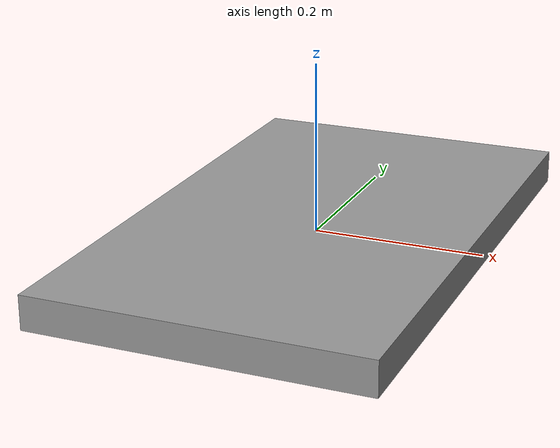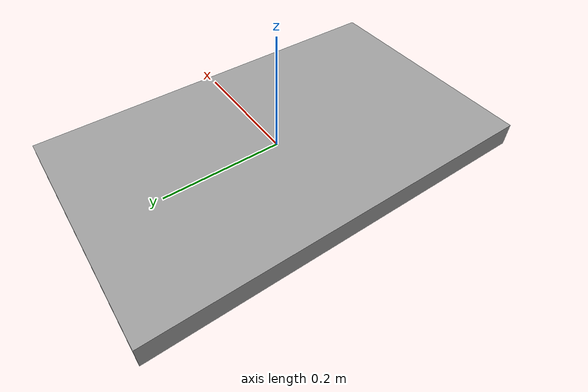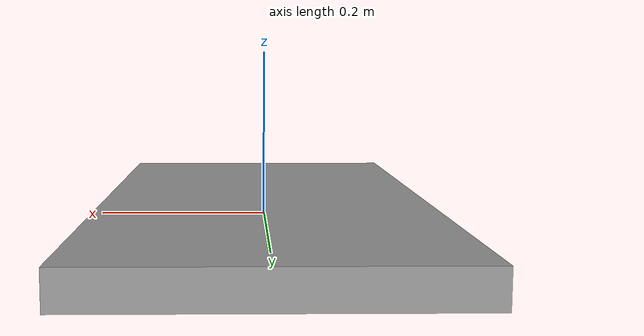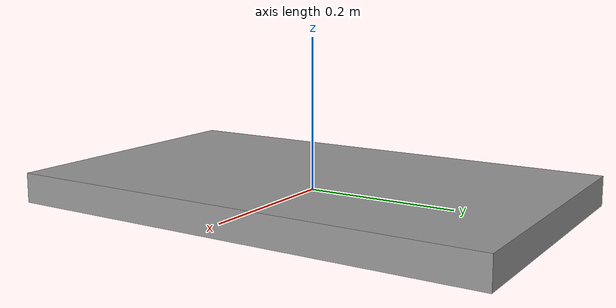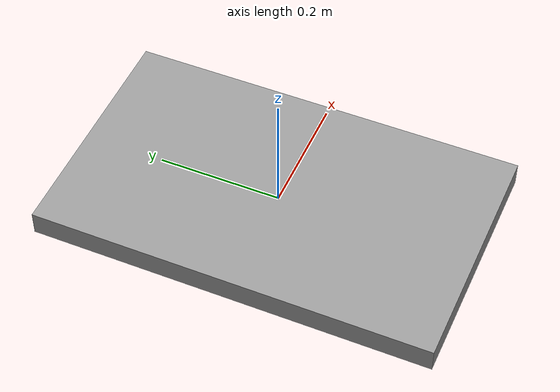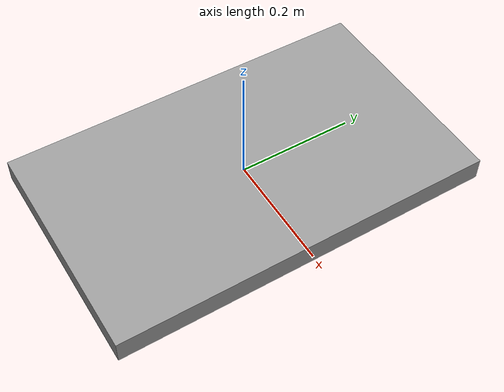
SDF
<?xml version="1.0"?>
<sdf version="1.6">
  <model name="robotics_testlab_B/plastic_cabinet.shelf">
    <link name="1_link">
      <collision name="1_col">
        <geometry>
          <box>
            <size>0.39 0.65 0.04</size>
          </box>
        </geometry>
      </collision>
      <visual name="1_vis">
        <geometry>
          <box>
            <size>0.39 0.65 0.04</size>
          </box>
        </geometry>
        <material>
          <ambient>0.6 0.6 0.6 1</ambient>
        </material>
      </visual>
      <pose>0 0 0 0 0 0</pose>
    </link>
    <link name="in_front_of">
      <virtual_volume name="in_front_of_vv">
        <geometry>
          <box>
            <size>0.15 0.65 1.76</size>
          </box>
        </geometry>
        <pose>-0.91 0.0 0.88 0 0 0</pose>
      </virtual_volume>
    </link>
    <link name="in">
      <virtual_volume name="in_vv">
        <geometry>
          <box>
            <size>0.65 0.42 1.76</size>
          </box>
        </geometry>
        <pose>0.0 0.0 0.88 0 0 0</pose>
      </virtual_volume>
    </link>
    <link name="on_top_of">
      <virtual_volume name="on_top_of_vv">
        <geometry>
          <box>
            <size>0.34 0.55 0.25</size>
          </box>
        </geometry>
        <pose>-0.02 0.0 0.175 0 0 0</pose>
      </virtual_volume>
    </link>
    <static>true</static>
  </model>
</sdf>
